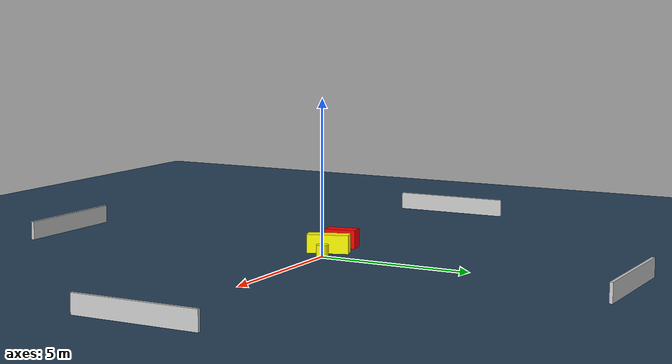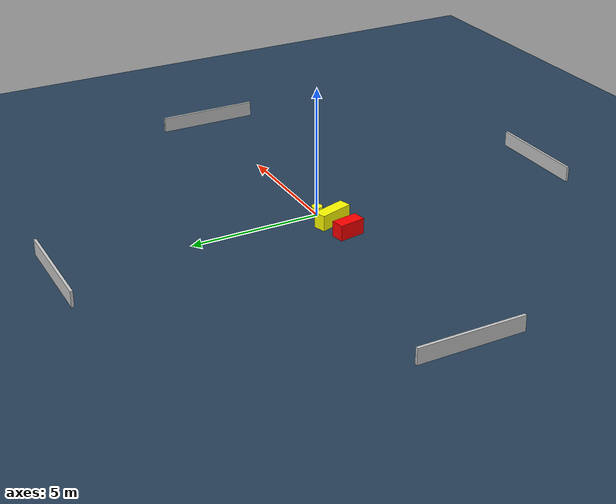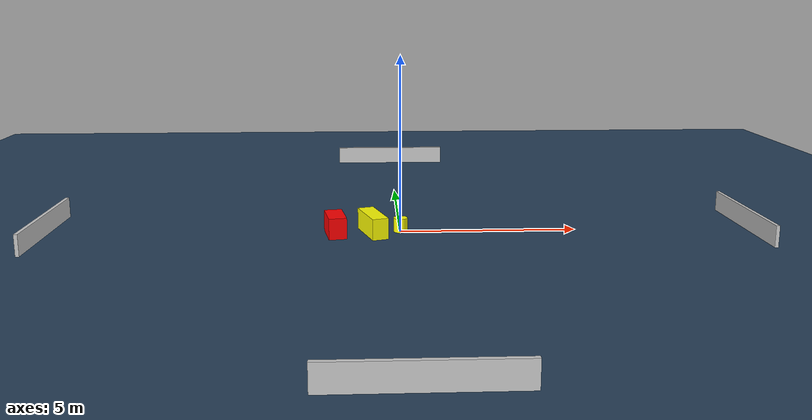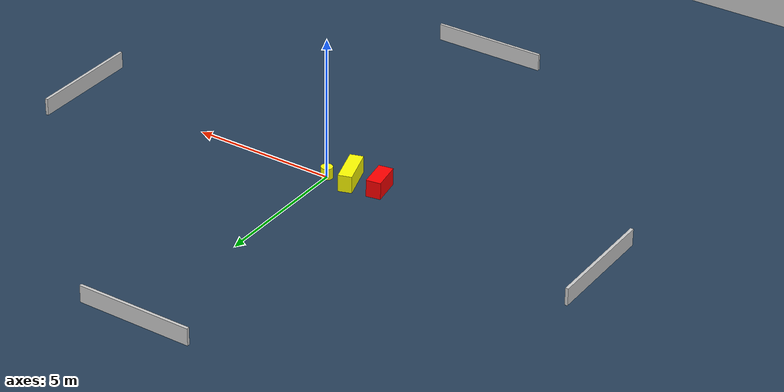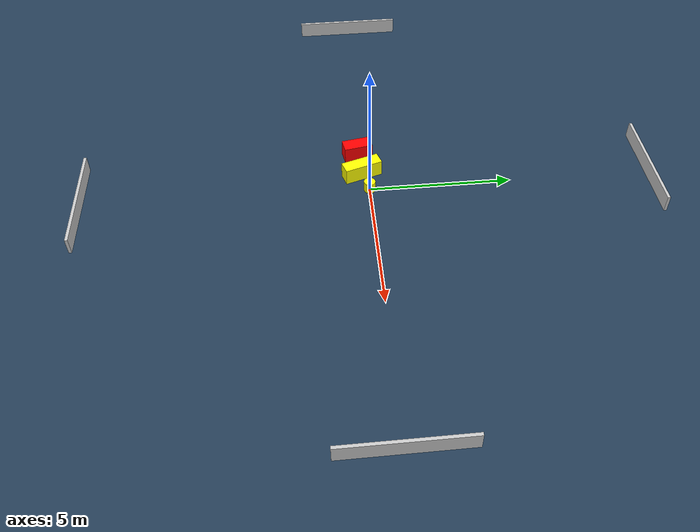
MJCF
<?xml version="1.0" ?>
<mujoco model="generated_environment">
  <option timestep="0.01" integrator="RK4" cone="elliptic"/>
  <default>
    <geom density="1"/>
  </default>
  <asset>
    <texture builtin="gradient" height="3072" name="skybox" rgb1="0.3 0.5 0.7" rgb2="0 0 0" type="skybox" width="512"/>
    <texture builtin="checker" height="300" name="groundplane" rgb1="0.2 0.3 0.4" rgb2="0.1 0.2 0.3" type="2d" width="300"/>
    <material name="groundplane" reflectance="0.2" texrepeat="5 5" texture="groundplane"/>
  </asset>
  <worldbody>
    <light dir="0 0 -1" directional="true" pos="0 0 1.5"/>
    <geom condim="3" friction="0.5 0.005 0.001" material="groundplane" name="floor" pos="0 0 0" size="0 0 0.05" type="plane"/>
    <body name="walls">
      <geom name="wall_1" condim="4" pos="-10.0 0.0 0.3" rgba="0.800000011920929 0.800000011920929 0.800000011920929 1.0" size="0.05 2.0 0.3" type="box"/>
      <geom name="wall_2" condim="4" pos="10.0 0.0 0.3" rgba="0.800000011920929 0.800000011920929 0.800000011920929 1.0" size="0.05 2.0 0.3" type="box"/>
      <geom name="wall_3" condim="4" pos="0.0 -10.0 0.3" rgba="0.800000011920929 0.800000011920929 0.800000011920929 1.0" size="2.0 0.05 0.3" type="box"/>
      <geom name="wall_4" condim="4" pos="0.0 10.0 0.3" rgba="0.800000011920929 0.800000011920929 0.800000011920929 1.0" size="2.0 0.05 0.3" type="box"/>
    </body>
    <body name="robot">
      <joint name="joint_x" type="slide" pos="0 0 0" axis="1 0 0"/>
      <joint name="joint_y" type="slide" pos="0 0 0" axis="0 1 0"/>
      <geom name="robot" type="cylinder" pos="0.0 0.0 0.2" size="0.2 0.2 0.0" mass="5.0" friction="1.0 0.005 0.0001" condim="4" rgba="1.0 1.0 0.0 1.0"/>
    </body>
    <body name="obstacle_1_movable">
      <geom name="obstacle_1_movable" condim="4" pos="-0.787653487337793 -0.2064475371585789 0.3" euler="0 0 197.71806024169183" friction="0.0 0.005 0.001" rgba="1.0 1.0 0.0 1.0" size="0.23174500070980283 0.6784249030942413 0.3" type="box" mass="0.1"/>
      <joint type="free"/>
    </body>
    <body name="obstacle_2_static">
      <geom name="obstacle_2_static" condim="4" pos="-1.8431769809261 -0.2821870961032081 0.3" euler="0 0 189.71996163093917" friction="0.0 0.005 0.001" rgba="1.0 0.0 0.0 1.0" size="0.2516991816698634 0.5093497602040022 0.3" type="box"/>
    </body>
  </worldbody>
  <actuator>
    <motor name="actuator_x" joint="joint_x" gear="1" ctrlrange="-1 1"/>
    <motor name="actuator_y" joint="joint_y" gear="1" ctrlrange="-1 1"/>
  </actuator>
</mujoco>
